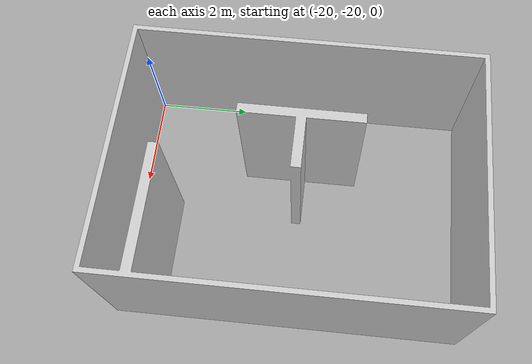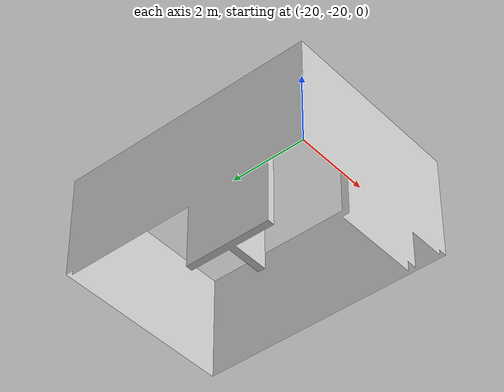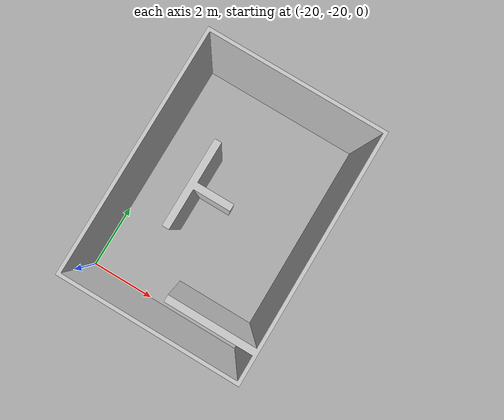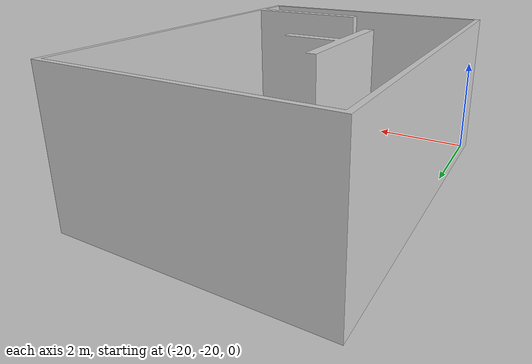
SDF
<?xml version="1.0" ?>
<sdf version="1.3">
  <model name="sim_iros16">
    <static>true</static>
    <pose>-20 -20 0 0 0 0</pose>
    <link name="walls">
      <collision name="collision">
        <geometry>
          <mesh>
            <uri>model://sim_iros16/meshes/sim_iros16_meshlab.dae</uri>
          </mesh>
        </geometry>
      </collision>
      <visual name="visual">
        <geometry>
          <mesh>
            <uri>model://sim_iros16/meshes/sim_iros16_meshlab.dae</uri>
          </mesh>
        </geometry>
        <cast_shadows>false</cast_shadows>
      </visual>
    </link>
  </model>
</sdf>
